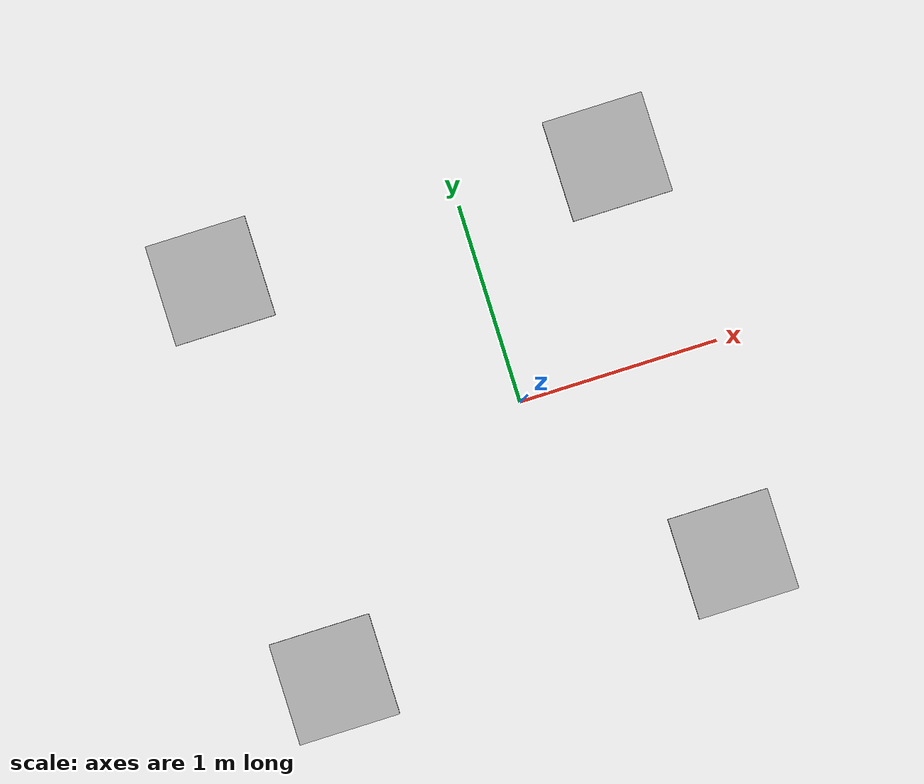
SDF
<sdf version="1.4">
 <world name="vrc_task_1">
  <scene><ambient>0.5 0.5 0.5 1.0</ambient><grid>true</grid><sky><clouds><speed>4</speed></clouds></sky></scene>
  <physics type="ode">
   <gravity>0 0 -9.81</gravity>
   <ode>
    <solver>
     <use_dynamic_moi_rescaling>true</use_dynamic_moi_rescaling>
     <type>quick</type>
     <iters>50</iters>
     <sor>1.0</sor>
    </solver>
    <constraints>
     <cfm>0.0</cfm>
     <erp>0.2</erp>
     <contact_max_correcting_vel>100.0</contact_max_correcting_vel>
     <contact_surface_layer>0.0</contact_surface_layer>
    </constraints>
   </ode>
   <real_time_update_rate>1000</real_time_update_rate>
   <max_step_size>0.001</max_step_size>
  </physics>
  <light type="directional" name="sun">
   <cast_shadows>false</cast_shadows>
   <pose>0 0 100 0 0 0</pose>
   <diffuse>0.8 0.8 0.8 1</diffuse>
   <specular>0.9 0.9 0.9 1</specular>
   <attenuation>
    <range>1000</range>
    <constant>0.9</constant>
    <linear>0.01</linear>
    <quadratic>0.001</quadratic>
   </attenuation>
   <direction>0 0 -1</direction>
  </light>
  <include><uri>model://aruco42</uri><pose>1 1 0 0 0 0</pose></include>
  <include><uri>model://aruco91</uri><pose>-1 1 0 0 0 0</pose></include>
  <include><uri>model://aruco186</uri><pose>1 -1 0 0 0 0</pose></include>
  <include><uri>model://aruco985</uri><pose>-1 -1 0 0 0 0</pose></include>
  <plugin name="ardupilot_sitl_gazebo_plugin" filename="libardupilot_sitl_gazebo_plugin.so">
   <UAV_MODEL>erlecopter</UAV_MODEL>
  </plugin>
 </world>
</sdf>

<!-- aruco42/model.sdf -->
<sdf version="1.5">
  <model name="Aruco42">
    <static>true</static>
    <link name="link">
      <pose>0 0 0.1 0 -1.57079632679 0</pose>
      <visual name="visual">
        <geometry>
          <mesh>
            <uri>model://aruco42/meshes/Aruco42.dae</uri>
          <scale>1 1 1</scale></mesh>
        </geometry>
      </visual>
    </link>
  </model>
</sdf>

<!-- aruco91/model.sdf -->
<sdf version="1.5">
  <model name="Aruco91">
    <static>true</static>
    <link name="link">
      <pose>0 0 0.1 0 -1.57079632679 0</pose>
      <visual name="visual">
        <geometry>
          <mesh>
            <uri>model://aruco91/meshes/Aruco91.dae</uri>
          <scale>1 1 1</scale></mesh>
        </geometry>
      </visual>
    </link>
  </model>
</sdf>

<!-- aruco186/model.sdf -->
<sdf version="1.5">
  <model name="Aruco186">
    <static>true</static>
    <link name="link">
      <pose>0 0 0.1 0 -1.57079632679 0</pose>
      <visual name="visual">
        <geometry>
          <mesh>
            <uri>model://aruco186/meshes/model.dae</uri>
          <scale>1 1 1</scale></mesh>
        </geometry>
      </visual>
    </link>
    <plugin name="mark_driver" filename="libmark_plugin.so">
      <shape></shape>
    </plugin>
  </model>
</sdf>

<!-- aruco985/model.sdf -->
<sdf version="1.5">
  <model name="Aruco985">
    <static>true</static>
    <link name="link">
      <pose>0 0 0.1 0 -1.57079632679 0</pose>
      <visual name="visual">
        <geometry>
          <mesh>
            <uri>model://aruco985/meshes/Aruco985.dae</uri>
          <scale>1 1 1</scale></mesh>
        </geometry>
      </visual>
    </link>
    <plugin name="mark_driver" filename="libmark_plugin.so">
      <shape></shape>
    </plugin>
  </model>
</sdf>
